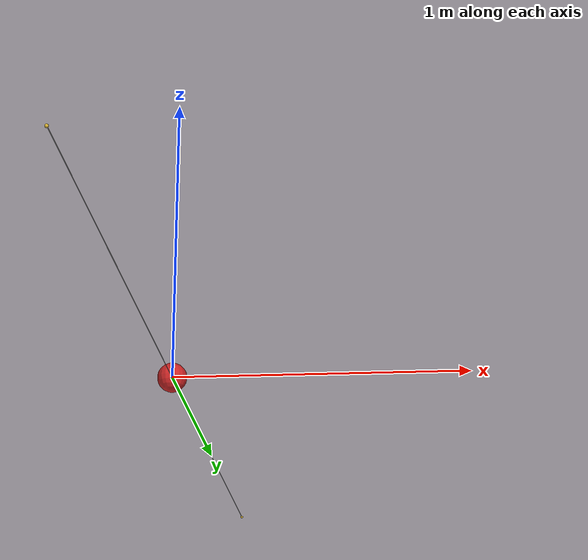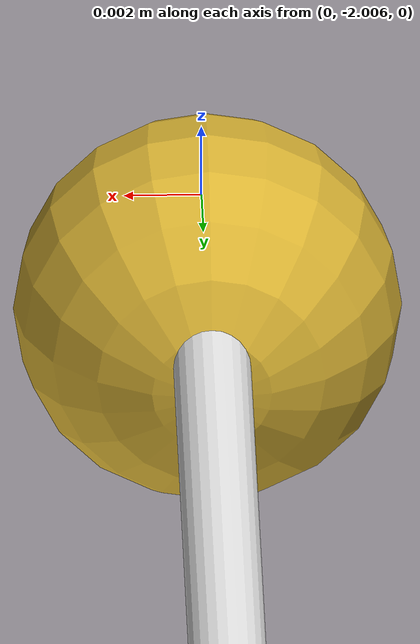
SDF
<?xml version='1.0'?>
<sdf version='1.6'>
  <enable_lockstep>false</enable_lockstep>
  <model name='double_slung_load_point_mass'>
    <static>false</static>

    <include>
      <uri>model://ball_hinge</uri>
      <name>ball_hinge_0</name>
      <pose>0 2.0 0 -1.57 0 0</pose>
    </include>

    <include>
      <uri>model://ball_hinge</uri>
      <name>ball_hinge_1</name>
      <pose>0 -2.0 0 1.57 0 0</pose>
    </include>

    <include>
      <uri>model://pendulum_2m</uri>
      <name>pendulum_0</name>
      <pose>0 1.0 0 -1.57 0 0</pose>
    </include>

    <include>
      <uri>model://pendulum_2m</uri>
      <name>pendulum_1</name>
      <pose>0 -1.0 0 1.57 0 0</pose>
    </include>

    <include>
      <uri>model://load_point_mass</uri>
      <name>load</name>
      <pose>0 0 0 0 0 0</pose>
    </include>

    <joint name="load_0_joint" type="universal">
      <pose>0 0 0 0 0 0</pose>
      <child>load::base_link</child>
      <parent>pendulum_0::base_link</parent>
      <axis>
        <xyz>1 1 1</xyz>
        <dynamics>
          <friction>10</friction>
        </dynamics>
      </axis>
    </joint>

    <joint name="load_1_joint" type="universal">
      <pose>0 0 0 0 0 0</pose>
      <child>load::base_link</child>
      <parent>pendulum_1::base_link</parent>
      <axis>
        <xyz>1 1 1</xyz>
        <dynamics>
          <friction>10</friction>
        </dynamics>
      </axis>
    </joint>

    <joint name="ball_hinge_0_joint" type="universal">
      <pose>0 0 1.0 0 0 0</pose>
      <child>pendulum_0::base_link</child>
      <parent>ball_hinge_0::base_link</parent>
      <axis>
        <xyz>1 1 0</xyz>
        <dynamics>
          <friction>10</friction>
        </dynamics>
      </axis>
    </joint>

    <joint name="ball_hinge_1_joint" type="universal">
      <pose>0 0 1.0 0 0 0</pose>
      <child>pendulum_1::base_link</child>
      <parent>ball_hinge_1::base_link</parent>
      <axis>
        <xyz>1 1 0</xyz>
        <dynamics>
          <friction>10</friction>
        </dynamics>
      </axis>
    </joint>

  </model>
</sdf>

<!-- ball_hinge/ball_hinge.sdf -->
<sdf version='1.6'>
  <enable_lockstep>false</enable_lockstep>
  <model name='ball_hinge'>
  <static>false</static>
    <link name='base_link'>
      <pose>0 0 0 0 0 0</pose>
      <inertial>
        <mass>0.05</mass>
        <inertia>
          <ixx>0.000001</ixx> <!-- 2/5*MR^2-->
          <ixy>0</ixy>
          <ixz>0</ixz>
          <iyy>0.000001</iyy>
          <iyz>0</iyz>
          <izz>0.000001</izz>
        </inertia>
      </inertial>
      <visual name='base_visual'>
        <geometry>
          <sphere>
            <radius>0.005 0.005 0.005</radius>
          </sphere>
        </geometry>
        <material>
          <script>
            <name>Gazebo/Gold</name>
            <uri>file://media/materials/scripts/gazebo.material</uri>
          </script>
        </material>
      </visual>
      <gravity>1</gravity>
    </link>
  </model>
</sdf>

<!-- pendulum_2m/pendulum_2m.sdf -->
<sdf version='1.6'>
  <enable_lockstep>false</enable_lockstep>
  <model name='pendulum_2m'>
    <static>false</static>
    <link name='base_link'>
      <pose>0 0 0 0 0 0</pose>
      <inertial>
        <mass>0.01</mass>
        <inertia>
          <ixx>0.0033</ixx> <!-- 1/12mL^2 -->
          <ixy>0</ixy>
          <ixz>0</ixz>
          <iyy>0.0033</iyy>
          <iyz>0</iyz>
          <izz>0.000000005</izz> <!-- 1/2mr^2 -->
        </inertia>
      </inertial>
      <visual name='base_visual'>
        <geometry>
          <cylinder>
            <radius>0.001</radius>
            <length>2.0</length>
          </cylinder>
        </geometry>
        <material>
          <script>
            <name>Gazebo/White</name>
            <uri>file://media/materials/scripts/gazebo.material</uri>
          </script>
        </material>
      </visual>
      <gravity>1</gravity>
    </link>
  </model>
</sdf>

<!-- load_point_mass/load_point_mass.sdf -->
<sdf version='1.6'>
  <enable_lockstep>false</enable_lockstep>
  <model name='load_point_mass'>
  <static>false</static>
    <link name='base_link'>
      <pose>0 0 0 0 0 0</pose>
      <inertial>
        <mass>0.25</mass>
        <inertia>
          <ixx>0.00025</ixx>
          <ixy>0</ixy>
          <ixz>0</ixz>
          <iyy>0.00025</iyy>
          <iyz>0</iyz>
          <izz>0.00025</izz>
        </inertia>
      </inertial>
      <collision name='base_collision'>
        <geometry>
          <sphere>
            <radius>0.05 0.05 0.05</radius>
          </sphere>
        </geometry>
        <surface>
          <contact>
            <ode/>
          </contact>
          <friction>
            <ode/>
          </friction>
        </surface>
      </collision>
      <visual name='base_visual'>
        <geometry>
          <sphere>
            <radius>0.05 0.05 0.05</radius>
          </sphere>
        </geometry>
        <material>
          <script>
            <name>Gazebo/Red</name>
            <uri>file://media/materials/scripts/gazebo.material</uri>
          </script>
        </material>
      </visual>
      <gravity>1</gravity>
    </link>
  </model>
</sdf>
